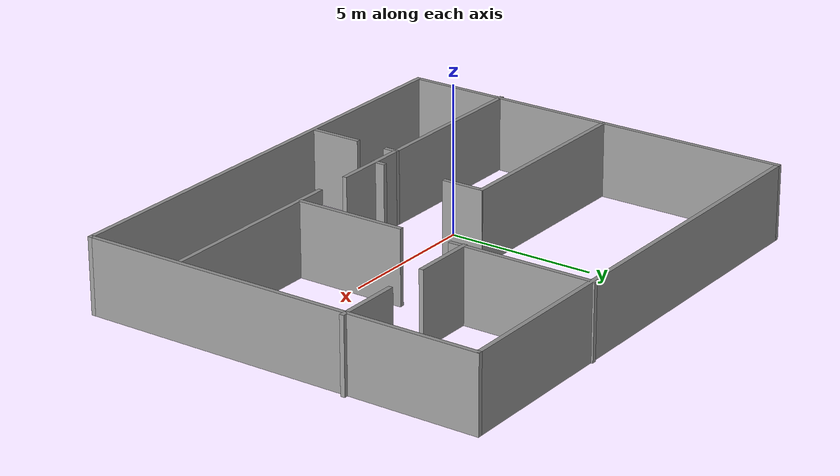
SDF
<?xml version='1.0'?>
<sdf version='1.7'>
  <model name='Flat'>
    <pose>2.76679 1.60785 0 0 -0 0</pose>
    <link name='Wall_1'>
      <collision name='Wall_1_Collision'>
        <geometry>
          <box>
            <size>16.5 0.15 2.5</size>
          </box>
        </geometry>
        <pose>0 0 1.25 0 -0 0</pose>
      </collision>
      <visual name='Wall_1_Visual'>
        <pose>0 0 1.25 0 -0 0</pose>
        <geometry>
          <box>
            <size>16.5 0.15 2.5</size>
          </box>
        </geometry>
        <material>
          <script>
            <uri>file://media/materials/scripts/gazebo.material</uri>
            <name>Gazebo/Grey</name>
          </script>
          <ambient>1 1 1 1</ambient>
        </material>
        <meta>
          <layer>0</layer>
        </meta>
      </visual>
      <pose>-0.031794 6.77215 0 0 -0 0</pose>
    </link>
    <link name='Wall_10'>
      <collision name='Wall_10_Collision'>
        <geometry>
          <box>
            <size>0.5 0.15 2.5</size>
          </box>
        </geometry>
        <pose>0 0 1.25 0 -0 0</pose>
      </collision>
      <visual name='Wall_10_Visual'>
        <pose>0 0 1.25 0 -0 0</pose>
        <geometry>
          <box>
            <size>0.5 0.15 2.5</size>
          </box>
        </geometry>
        <material>
          <script>
            <uri>file://media/materials/scripts/gazebo.material</uri>
            <name>Gazebo/Grey</name>
          </script>
          <ambient>1 1 1 1</ambient>
        </material>
        <meta>
          <layer>0</layer>
        </meta>
      </visual>
      <pose>-2.42245 -3.74352 0 0 -0 -1.5708</pose>
    </link>
    <link name='Wall_15'>
      <collision name='Wall_15_Collision'>
        <geometry>
          <box>
            <size>1.75 0.15 2.5</size>
          </box>
        </geometry>
        <pose>0 0 1.25 0 -0 0</pose>
      </collision>
      <visual name='Wall_15_Visual'>
        <pose>0 0 1.25 0 -0 0</pose>
        <geometry>
          <box>
            <size>1.75 0.15 2.5</size>
          </box>
        </geometry>
        <material>
          <script>
            <uri>file://media/materials/scripts/gazebo.material</uri>
            <name>Gazebo/Grey</name>
          </script>
          <ambient>1 1 1 1</ambient>
        </material>
        <meta>
          <layer>0</layer>
        </meta>
      </visual>
      <pose>-2.46159 -5.91852 0 0 -0 1.5708</pose>
    </link>
    <link name='Wall_17'>
      <collision name='Wall_17_Collision'>
        <geometry>
          <box>
            <size>2.75 0.15 2.5</size>
          </box>
        </geometry>
        <pose>0 0 1.25 0 -0 0</pose>
      </collision>
      <visual name='Wall_17_Visual'>
        <pose>0 0 1.25 0 -0 0</pose>
        <geometry>
          <box>
            <size>2.75 0.15 2.5</size>
          </box>
        </geometry>
        <material>
          <script>
            <uri>file://media/materials/scripts/gazebo.material</uri>
            <name>Gazebo/Grey</name>
          </script>
          <ambient>1 1 1 1</ambient>
        </material>
        <meta>
          <layer>0</layer>
        </meta>
      </visual>
      <pose>-1.12245 -3.56853 0 0 -0 0</pose>
    </link>
    <link name='Wall_19'>
      <collision name='Wall_19_Collision'>
        <geometry>
          <box>
            <size>6.75 0.15 2.5</size>
          </box>
        </geometry>
        <pose>0 0 1.25 0 -0 0</pose>
      </collision>
      <visual name='Wall_19_Visual'>
        <pose>0 0 1.25 0 -0 0</pose>
        <geometry>
          <box>
            <size>6.75 0.15 2.5</size>
          </box>
        </geometry>
        <material>
          <script>
            <uri>file://media/materials/scripts/gazebo.material</uri>
            <name>Gazebo/Grey</name>
          </script>
          <ambient>1 1 1 1</ambient>
        </material>
        <meta>
          <layer>0</layer>
        </meta>
      </visual>
      <pose>4.82754 -3.56853 0 0 -0 0</pose>
    </link>
    <link name='Wall_2'>
      <collision name='Wall_2_Collision'>
        <geometry>
          <box>
            <size>13.75 0.15 2.5</size>
          </box>
        </geometry>
        <pose>0 0 1.25 0 -0 0</pose>
      </collision>
      <visual name='Wall_2_Visual'>
        <pose>0 0 1.25 0 -0 0</pose>
        <geometry>
          <box>
            <size>13.75 0.15 2.5</size>
          </box>
        </geometry>
        <material>
          <script>
            <uri>file://media/materials/scripts/gazebo.material</uri>
            <name>Gazebo/Grey</name>
          </script>
          <ambient>1 1 1 1</ambient>
        </material>
        <meta>
          <layer>0</layer>
        </meta>
      </visual>
      <pose>8.14321 -0.027847 0 0 -0 -1.5708</pose>
    </link>
    <link name='Wall_21'>
      <collision name='Wall_21_Collision'>
        <geometry>
          <box>
            <size>5 0.15 2.5</size>
          </box>
        </geometry>
        <pose>0 0 1.25 0 -0 0</pose>
      </collision>
      <visual name='Wall_21_Visual'>
        <pose>0 0 1.25 0 -0 0</pose>
        <geometry>
          <box>
            <size>5 0.15 2.5</size>
          </box>
        </geometry>
        <material>
          <script>
            <uri>file://media/materials/scripts/gazebo.material</uri>
            <name>Gazebo/Grey</name>
          </script>
          <ambient>1 1 1 1</ambient>
        </material>
        <meta>
          <layer>0</layer>
        </meta>
      </visual>
      <pose>2.50382 4.40285 0 0 -0 -1.5708</pose>
    </link>
    <link name='Wall_23'>
      <collision name='Wall_23_Collision'>
        <geometry>
          <box>
            <size>3.75 0.15 2.5</size>
          </box>
        </geometry>
        <pose>0 0 1.25 0 -0 0</pose>
      </collision>
      <visual name='Wall_23_Visual'>
        <pose>0 0 1.25 0 -0 0</pose>
        <geometry>
          <box>
            <size>3.75 0.15 2.5</size>
          </box>
        </geometry>
        <material>
          <script>
            <uri>file://media/materials/scripts/gazebo.material</uri>
            <name>Gazebo/Grey</name>
          </script>
          <ambient>1 1 1 1</ambient>
        </material>
        <meta>
          <layer>0</layer>
        </meta>
      </visual>
      <pose>2.50382 -1.67215 0 0 -0 -1.5708</pose>
    </link>
    <link name='Wall_25'>
      <collision name='Wall_25_Collision'>
        <geometry>
          <box>
            <size>2.20278 0.15 2.5</size>
          </box>
        </geometry>
        <pose>0 0 1.25 0 -0 0</pose>
      </collision>
      <visual name='Wall_25_Visual'>
        <pose>0 0 1.25 0 -0 0</pose>
        <geometry>
          <box>
            <size>2.20278 0.15 2.5</size>
          </box>
        </geometry>
        <material>
          <script>
            <uri>file://media/materials/scripts/gazebo.material</uri>
            <name>Gazebo/Grey</name>
          </script>
          <ambient>1 1 1 1</ambient>
        </material>
        <meta>
          <layer>0</layer>
        </meta>
      </visual>
      <pose>3.49877 2.3881 0 0 -0 -0.001083</pose>
    </link>
    <link name='Wall_27'>
      <collision name='Wall_27_Collision'>
        <geometry>
          <box>
            <size>2.29722 0.15 2.5</size>
          </box>
        </geometry>
        <pose>0 0 1.25 0 -0 0</pose>
      </collision>
      <visual name='Wall_27_Visual'>
        <pose>0 0 1.25 0 -0 0</pose>
        <geometry>
          <box>
            <size>2.29722 0.15 2.5</size>
          </box>
        </geometry>
        <material>
          <script>
            <uri>file://media/materials/scripts/gazebo.material</uri>
            <name>Gazebo/Grey</name>
          </script>
          <ambient>1 1 1 1</ambient>
        </material>
        <meta>
          <layer>0</layer>
        </meta>
      </visual>
      <pose>7.19877 2.3881 0 0 -0 0.001035</pose>
    </link>
    <link name='Wall_3'>
      <collision name='Wall_3_Collision'>
        <geometry>
          <box>
            <size>16.5 0.15 2.5</size>
          </box>
        </geometry>
        <pose>0 0 1.25 0 -0 0</pose>
      </collision>
      <visual name='Wall_3_Visual'>
        <pose>0 0 1.25 0 -0 0</pose>
        <geometry>
          <box>
            <size>16.5 0.15 2.5</size>
          </box>
        </geometry>
        <material>
          <script>
            <uri>file://media/materials/scripts/gazebo.material</uri>
            <name>Gazebo/Grey</name>
          </script>
          <ambient>1 1 1 1</ambient>
        </material>
        <meta>
          <layer>0</layer>
        </meta>
      </visual>
      <pose>-0.031794 -6.82785 0 0 -0 3.14159</pose>
    </link>
    <link name='Wall_35'>
      <collision name='Wall_35_Collision'>
        <geometry>
          <box>
            <size>7 0.15 2.5</size>
          </box>
        </geometry>
        <pose>0 0 1.25 0 -0 0</pose>
      </collision>
      <visual name='Wall_35_Visual'>
        <pose>0 0 1.25 0 -0 0</pose>
        <geometry>
          <box>
            <size>7 0.15 2.5</size>
          </box>
        </geometry>
        <material>
          <script>
            <uri>file://media/materials/scripts/gazebo.material</uri>
            <name>Gazebo/Grey</name>
          </script>
          <ambient>1 1 1 1</ambient>
        </material>
        <meta>
          <layer>0</layer>
        </meta>
      </visual>
      <pose>-4.76185 0.429528 0 0 -0 0</pose>
    </link>
    <link name='Wall_36'>
      <collision name='Wall_36_Collision'>
        <geometry>
          <box>
            <size>1.46542 0.15 2.5</size>
          </box>
        </geometry>
        <pose>0 0 1.25 0 -0 0</pose>
      </collision>
      <visual name='Wall_36_Visual'>
        <pose>0 0 1.25 0 -0 0</pose>
        <geometry>
          <box>
            <size>1.46542 0.15 2.5</size>
          </box>
        </geometry>
        <material>
          <script>
            <uri>file://media/materials/scripts/gazebo.material</uri>
            <name>Gazebo/Grey</name>
          </script>
          <ambient>1 1 1 1</ambient>
        </material>
        <meta>
          <layer>0</layer>
        </meta>
      </visual>
      <pose>-1.3193 -0.245733 0 0 -0 -1.5708</pose>
    </link>
    <link name='Wall_38'>
      <collision name='Wall_38_Collision'>
        <geometry>
          <box>
            <size>0.5 0.15 2.5</size>
          </box>
        </geometry>
        <pose>0 0 1.25 0 -0 0</pose>
      </collision>
      <visual name='Wall_38_Visual'>
        <pose>0 0 1.25 0 -0 0</pose>
        <geometry>
          <box>
            <size>0.5 0.15 2.5</size>
          </box>
        </geometry>
        <material>
          <script>
            <uri>file://media/materials/scripts/gazebo.material</uri>
            <name>Gazebo/Grey</name>
          </script>
          <ambient>1 1 1 1</ambient>
        </material>
        <meta>
          <layer>0</layer>
        </meta>
      </visual>
      <pose>-1.3193 -3.42844 0 0 -0 -1.5708</pose>
    </link>
    <link name='Wall_6'>
      <collision name='Wall_6_Collision'>
        <geometry>
          <box>
            <size>13.75 0.15 2.5</size>
          </box>
        </geometry>
        <pose>0 0 1.25 0 -0 0</pose>
      </collision>
      <visual name='Wall_6_Visual'>
        <pose>0 0 1.25 0 -0 0</pose>
        <geometry>
          <box>
            <size>13.75 0.15 2.5</size>
          </box>
        </geometry>
        <material>
          <script>
            <uri>file://media/materials/scripts/gazebo.material</uri>
            <name>Gazebo/Grey</name>
          </script>
          <ambient>1 1 1 1</ambient>
        </material>
        <meta>
          <layer>0</layer>
        </meta>
      </visual>
      <pose>-8.20679 -0.027847 0 0 -0 -1.5708</pose>
    </link>
    <link name='Wall_8'>
      <collision name='Wall_8_Collision'>
        <geometry>
          <box>
            <size>6 0.15 2.5</size>
          </box>
        </geometry>
        <pose>0 0 1.25 0 -0 0</pose>
      </collision>
      <visual name='Wall_8_Visual'>
        <pose>0 0 1.25 0 -0 0</pose>
        <geometry>
          <box>
            <size>6 0.15 2.5</size>
          </box>
        </geometry>
        <material>
          <script>
            <uri>file://media/materials/scripts/gazebo.material</uri>
            <name>Gazebo/Grey</name>
          </script>
          <ambient>1 1 1 1</ambient>
        </material>
        <meta>
          <layer>0</layer>
        </meta>
      </visual>
      <pose>-5.34746 -3.56853 0 0 -0 0</pose>
    </link>
    <static>1</static>
  </model>
</sdf>
